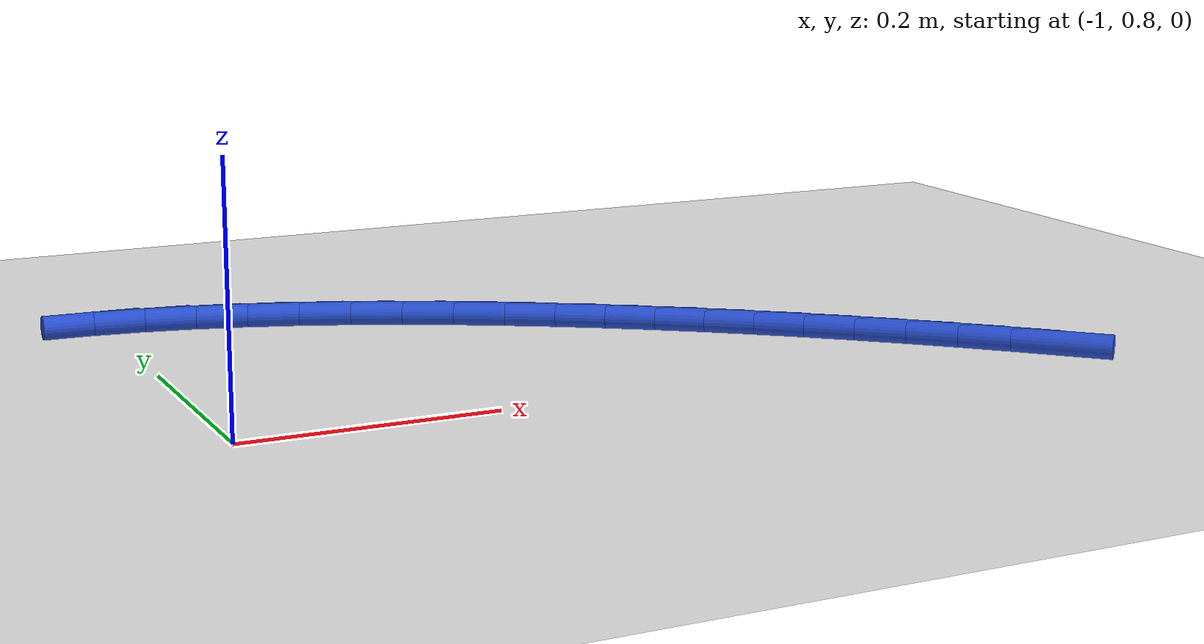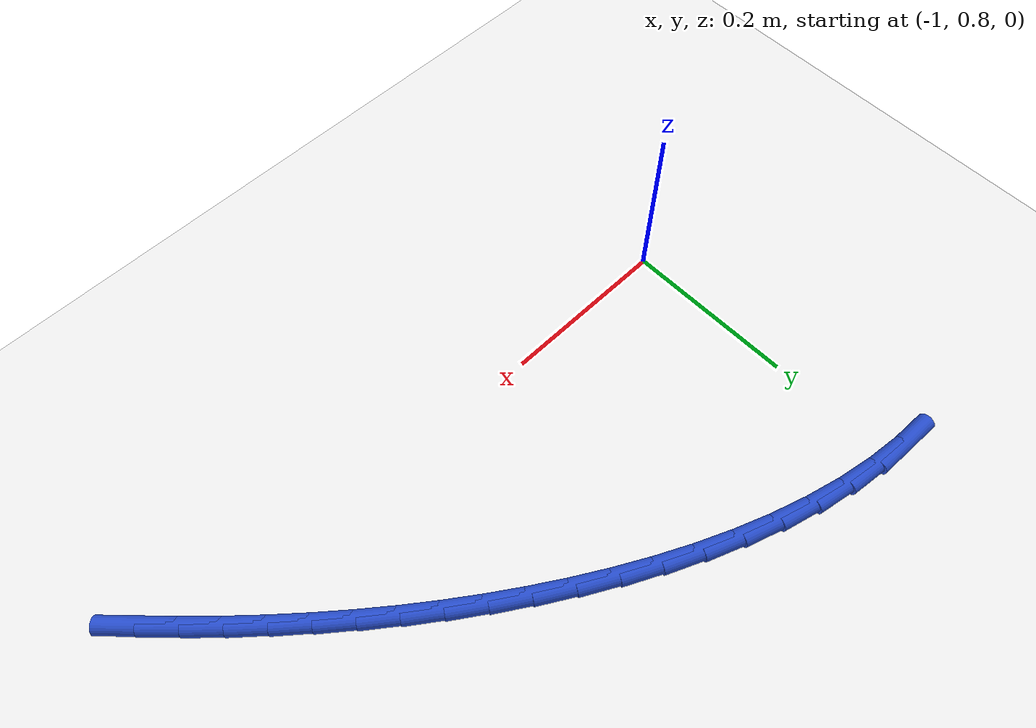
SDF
<sdf version="1.6">
 <world name="default">
  <model name="ground_plane">
   <static>1</static>
   <link name="link">
    <collision name="collision">
     <geometry><plane><normal>0 0 1</normal><size>100 100</size></plane></geometry>
     <surface><friction><ode><mu>100</mu><mu2>50</mu2></ode></friction></surface>
    </collision>
    <visual name="visual">
     <cast_shadows>0</cast_shadows>
     <geometry><plane><normal>0 0 1</normal><size>100 100</size></plane></geometry>
     <material>
      <script><uri>file://media/materials/scripts/gazebo.material</uri><name>Gazebo/WhiteGlow</name></script>
     </material>
    </visual>
   </link>
  </model>
  <model name="line">
   <link name="link_20">
    <pose>-0.3306688174144268 0.7536024599961615 0.01 0 1.57 -0.7895716750842159</pose>
    <collision name="collision">
     <geometry><cylinder><radius>0.01</radius><length>0.08</length></cylinder></geometry>
    </collision>
    <visual name="visual">
     <material>
      <script><name>Gazebo/Blue</name><uri>file://media/materials/scripts/gazebo.material</uri></script>
     </material>
     <geometry><cylinder><radius>0.01</radius><length>0.08</length></cylinder></geometry>
    </visual>
   </link>
   <link name="link_21">
    <pose>-0.3604948972515602 0.7836785436642874 0.01 0 1.57 -0.7655430235785317</pose>
    <collision name="collision">
     <geometry><cylinder><radius>0.01</radius><length>0.08</length></cylinder></geometry>
    </collision>
    <visual name="visual">
     <material>
      <script><name>Gazebo/Blue</name><uri>file://media/materials/scripts/gazebo.material</uri></script>
     </material>
     <geometry><cylinder><radius>0.01</radius><length>0.08</length></cylinder></geometry>
    </visual>
   </link>
   <link name="link_22">
    <pose>-0.3909485723827645 0.8129462858581288 0.01 0 1.57 -0.742835489616907</pose>
    <collision name="collision">
     <geometry><cylinder><radius>0.01</radius><length>0.08</length></cylinder></geometry>
    </collision>
    <visual name="visual">
     <material>
      <script><name>Gazebo/Blue</name><uri>file://media/materials/scripts/gazebo.material</uri></script>
     </material>
     <geometry><cylinder><radius>0.01</radius><length>0.08</length></cylinder></geometry>
    </visual>
   </link>
   <link name="link_23">
    <pose>-0.42193471557278617 0.8414009408939098 0.01 0 1.57 -0.7212509171712825</pose>
    <collision name="collision">
     <geometry><cylinder><radius>0.01</radius><length>0.08</length></cylinder></geometry>
    </collision>
    <visual name="visual">
     <material>
      <script><name>Gazebo/Blue</name><uri>file://media/materials/scripts/gazebo.material</uri></script>
     </material>
     <geometry><cylinder><radius>0.01</radius><length>0.08</length></cylinder></geometry>
    </visual>
   </link>
   <link name="link_24">
    <pose>-0.45336688381607915 0.869038728261463 0.01 0 1.57 -0.6990263947751288</pose>
    <collision name="collision">
     <geometry><cylinder><radius>0.01</radius><length>0.08</length></cylinder></geometry>
    </collision>
    <visual name="visual">
     <material>
      <script><name>Gazebo/Blue</name><uri>file://media/materials/scripts/gazebo.material</uri></script>
     </material>
     <geometry><cylinder><radius>0.01</radius><length>0.08</length></cylinder></geometry>
    </visual>
   </link>
   <link name="link_25">
    <pose>-0.48528500544045994 0.8958699124816509 0.01 0 1.57 -0.6750007257451784</pose>
    <collision name="collision">
     <geometry><cylinder><radius>0.01</radius><length>0.08</length></cylinder></geometry>
    </collision>
    <visual name="visual">
     <material>
      <script><name>Gazebo/Blue</name><uri>file://media/materials/scripts/gazebo.material</uri></script>
     </material>
     <geometry><cylinder><radius>0.01</radius><length>0.08</length></cylinder></geometry>
    </visual>
   </link>
   <link name="link_26">
    <pose>-0.5178244953026235 0.9219153705396154 0.01 0 1.57 -0.6493736781397184</pose>
    <collision name="collision">
     <geometry><cylinder><radius>0.01</radius><length>0.08</length></cylinder></geometry>
    </collision>
    <visual name="visual">
     <material>
      <script><name>Gazebo/Blue</name><uri>file://media/materials/scripts/gazebo.material</uri></script>
     </material>
     <geometry><cylinder><radius>0.01</radius><length>0.08</length></cylinder></geometry>
    </visual>
   </link>
   <link name="link_27">
    <pose>-0.5511231230595295 0.9471962411352546 0.01 0 1.57 -0.6224156574424398</pose>
    <collision name="collision">
     <geometry><cylinder><radius>0.01</radius><length>0.08</length></cylinder></geometry>
    </collision>
    <visual name="visual">
     <material>
      <script><name>Gazebo/Blue</name><uri>file://media/materials/scripts/gazebo.material</uri></script>
     </material>
     <geometry><cylinder><radius>0.01</radius><length>0.08</length></cylinder></geometry>
    </visual>
   </link>
   <link name="link_28">
    <pose>-0.5853186583681362 0.9717336629684663 0.01 0 1.57 -0.5944263656051536</pose>
    <collision name="collision">
     <geometry><cylinder><radius>0.01</radius><length>0.08</length></cylinder></geometry>
    </collision>
    <visual name="visual">
     <material>
      <script><name>Gazebo/Blue</name><uri>file://media/materials/scripts/gazebo.material</uri></script>
     </material>
     <geometry><cylinder><radius>0.01</radius><length>0.08</length></cylinder></geometry>
    </visual>
   </link>
   <link name="link_29">
    <pose>-0.6205488708854036 0.9955487747391487 0.01 0 1.57 -0.5654877578045786</pose>
    <collision name="collision">
     <geometry><cylinder><radius>0.01</radius><length>0.08</length></cylinder></geometry>
    </collision>
    <visual name="visual">
     <material>
      <script><name>Gazebo/Blue</name><uri>file://media/materials/scripts/gazebo.material</uri></script>
     </material>
     <geometry><cylinder><radius>0.01</radius><length>0.08</length></cylinder></geometry>
    </visual>
   </link>
   <link name="link_30">
    <pose>-0.6569225371076504 1.018632260359022 0.01 0 1.57 -0.5342623128314363</pose>
    <collision name="collision">
     <geometry><cylinder><radius>0.01</radius><length>0.08</length></cylinder></geometry>
    </collision>
    <visual name="visual">
     <material>
      <script><name>Gazebo/Blue</name><uri>file://media/materials/scripts/gazebo.material</uri></script>
     </material>
     <geometry><cylinder><radius>0.01</radius><length>0.08</length></cylinder></geometry>
    </visual>
   </link>
   <link name="link_31">
    <pose>-0.6943720421616941 1.0407895199805977 0.01 0 1.57 -0.4998683663550835</pose>
    <collision name="collision">
     <geometry><cylinder><radius>0.01</radius><length>0.08</length></cylinder></geometry>
    </collision>
    <visual name="visual">
     <material>
      <script><name>Gazebo/Blue</name><uri>file://media/materials/scripts/gazebo.material</uri></script>
     </material>
     <geometry><cylinder><radius>0.01</radius><length>0.08</length></cylinder></geometry>
    </visual>
   </link>
   <link name="link_32">
    <pose>-0.7327634324893593 1.0617562707499502 0.01 0 1.57 -0.46185478783518247</pose>
    <collision name="collision">
     <geometry><cylinder><radius>0.01</radius><length>0.08</length></cylinder></geometry>
    </collision>
    <visual name="visual">
     <material>
      <script><name>Gazebo/Blue</name><uri>file://media/materials/scripts/gazebo.material</uri></script>
     </material>
     <geometry><cylinder><radius>0.01</radius><length>0.08</length></cylinder></geometry>
    </visual>
   </link>
   <link name="link_33">
    <pose>-0.7719626347876547 1.0812681040316634 0.01 0 1.57 -0.419714470521365</pose>
    <collision name="collision">
     <geometry><cylinder><radius>0.01</radius><length>0.08</length></cylinder></geometry>
    </collision>
    <visual name="visual">
     <material>
      <script><name>Gazebo/Blue</name><uri>file://media/materials/scripts/gazebo.material</uri></script>
     </material>
     <geometry><cylinder><radius>0.01</radius><length>0.08</length></cylinder></geometry>
    </visual>
   </link>
   <link name="link_34">
    <pose>-0.8118355757535893 1.0990606111903205 0.01 0 1.57 -0.37288350924930824</pose>
    <collision name="collision">
     <geometry><cylinder><radius>0.01</radius><length>0.08</length></cylinder></geometry>
    </collision>
    <visual name="visual">
     <material>
      <script><name>Gazebo/Blue</name><uri>file://media/materials/scripts/gazebo.material</uri></script>
     </material>
     <geometry><cylinder><radius>0.01</radius><length>0.08</length></cylinder></geometry>
    </visual>
   </link>
   <link name="link_35">
    <pose>-0.8522481820841725 1.1148693835905052 0.01 0 1.57 -0.32074837740846524</pose>
    <collision name="collision">
     <geometry><cylinder><radius>0.01</radius><length>0.08</length></cylinder></geometry>
    </collision>
    <visual name="visual">
     <material>
      <script><name>Gazebo/Blue</name><uri>file://media/materials/scripts/gazebo.material</uri></script>
     </material>
     <geometry><cylinder><radius>0.01</radius><length>0.08</length></cylinder></geometry>
    </visual>
   </link>
   <link name="link_36">
    <pose>-0.8930663804764135 1.1284300125968012 0.01 0 1.57 -0.26266477723516907</pose>
    <collision name="collision">
     <geometry><cylinder><radius>0.01</radius><length>0.08</length></cylinder></geometry>
    </collision>
    <visual name="visual">
     <material>
      <script><name>Gazebo/Blue</name><uri>file://media/materials/scripts/gazebo.material</uri></script>
     </material>
     <geometry><cylinder><radius>0.01</radius><length>0.08</length></cylinder></geometry>
    </visual>
   </link>
   <link name="link_37">
    <pose>-0.9341560976273213 1.1394780895737922 0.01 0 1.57 -0.19799450942579938</pose>
    <collision name="collision">
     <geometry><cylinder><radius>0.01</radius><length>0.08</length></cylinder></geometry>
    </collision>
    <visual name="visual">
     <material>
      <script><name>Gazebo/Blue</name><uri>file://media/materials/scripts/gazebo.material</uri></script>
     </material>
     <geometry><cylinder><radius>0.01</radius><length>0.08</length></cylinder></geometry>
    </visual>
   </link>
   <link name="link_38">
    <pose>-0.975383260233905 1.1477492058860612 0.01 0 1.57 -0.12616784969773842</pose>
    <collision name="collision">
     <geometry><cylinder><radius>0.01</radius><length>0.08</length></cylinder></geometry>
    </collision>
    <visual name="visual">
     <material>
      <script><name>Gazebo/Blue</name><uri>file://media/materials/scripts/gazebo.material</uri></script>
     </material>
     <geometry><cylinder><radius>0.01</radius><length>0.08</length></cylinder></geometry>
    </visual>
   </link>
   <link name="link_39">
    <pose>-1.016613794993174 1.152978952898192 0.01 0 1.57 -0.04677793984952982</pose>
    <collision name="collision">
     <geometry><cylinder><radius>0.01</radius><length>0.08</length></cylinder></geometry>
    </collision>
    <visual name="visual">
     <material>
      <script><name>Gazebo/Blue</name><uri>file://media/materials/scripts/gazebo.material</uri></script>
     </material>
     <geometry><cylinder><radius>0.01</radius><length>0.08</length></cylinder></geometry>
    </visual>
   </link>
  </model>
 </world>
</sdf>
